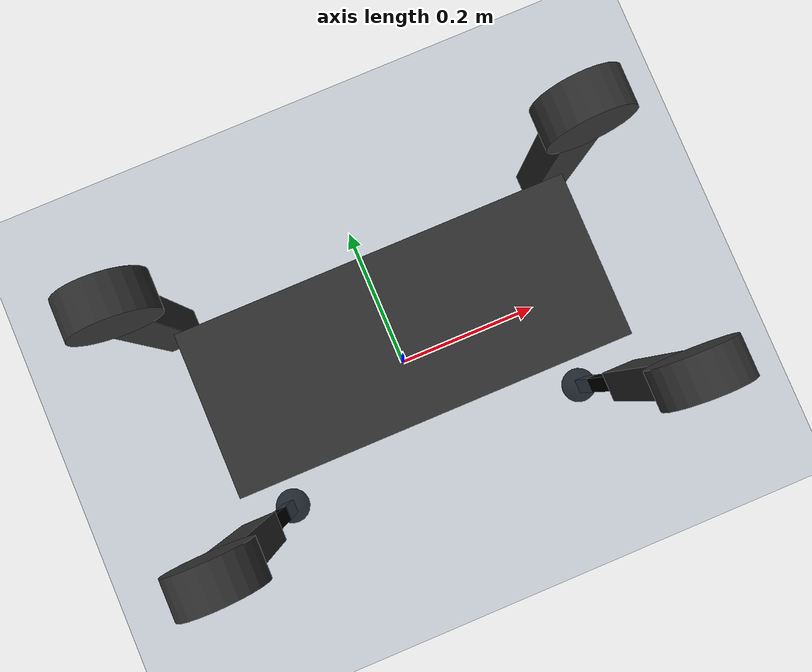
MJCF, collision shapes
<mujoco model="basic scene">

  <include file="aliengo.xml"/>

	 <option timestep="0.001" integrator="RK4" gravity="0 0 -9.81">
		<flag sensornoise="disable" contact="enable" energy="enable"/>
	</option>

  <statistic center="0 0 0.1" extent="0.8"/>

  <asset>
    <texture type="skybox" builtin="gradient" rgb1="0.3 0.5 0.7" rgb2="0 0 0" width="512"
        height="3072"/>
    <texture type="2d" name="groundplane" builtin="checker" mark="edge" rgb1="0.2 0.3 0.4"
        rgb2="0.1 0.2 0.3" markrgb="0.8 0.8 0.8" width="300" height="300"/>
    <material name="groundplane" texture="groundplane" texuniform="true" texrepeat="5 5"
        reflectance="0.2"/>
  </asset>
  <worldbody>
    <light pos="0 0 1.5" dir="0 0 -1" directional="true"/>
    <geom name="floor2" size="0 0 0.5" type="plane" material="groundplane" friction=" 1 1 1"/>
  </worldbody>

</mujoco>

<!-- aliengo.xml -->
<mujoco model="aliengo_description">
    <compiler angle="radian" meshdir="../meshes/" />
    <size njmax="500" nconmax="100" />
    <option gravity='0 0 -9.806' iterations='50' solver='Newton'/>

    <default>
        <geom contype="1" conaffinity="1" friction="0.6 0.3 0.3" rgba="0.5 0.6 0.7 1" margin="0.001" group="0"/>

        <light castshadow="false" diffuse="1 1 1"/>
        <motor ctrlrange="-44.4 44.4" ctrllimited="true"/>
        <camera fovy="60"/>
        <joint damping="0.01" armature="0.01" frictionloss="0.2" />

    </default>

    <asset>
        <mesh name="trunk" file="trunk.stl" />
        <mesh name="hip" file="hip.stl" />
        <mesh name="thigh_mirror" file="thigh_mirror.stl" />
        <mesh name="calf" file="calf.stl" />
        <mesh name="thigh" file="thigh.stl" />
    </asset>

    <asset>
        <texture type="skybox" builtin="gradient" rgb1="1.0 1.0 1.0" rgb2="1.0 1.0 1.0" width="512" height="512"/>
        <texture name="plane" type="2d" builtin="flat" rgb1="1 1 1" rgb2="1 1 1" width="512" height="512" mark="cross" markrgb="0 0 0"/>
        <material name="plane" reflectance="0.0" texture="plane" texrepeat="3 3" texuniform="true"/>
    </asset>

    <visual>
        <rgba com="0.502 1.0 0 0.5" contactforce="0.98 0.4 0.4 0.7" contactpoint="1.0 1.0 0.6 0.4"/>
        <scale com="0.2" forcewidth="0.035" contactwidth="0.10" contactheight="0.04"/>
    </visual>

    <worldbody>
        <light directional="true" diffuse=".8 .8 .8" pos="0 0 10" dir="0 0 -10"/>
        <camera name="track" mode="trackcom" pos="0 -1.3 1.6" xyaxes="1 0 0 0 0.707 0.707"/>

        <body name="trunk" pos="0 0 0.4">
            <inertial pos="0.00846406 0.00404455 -0.000762916" quat="-3.12625e-05 0.708321 0.00247254 0.705886" mass="9.042" diaginertia="0.174706 0.161175 0.033357" />
            <joint type="free" />
            <geom type="mesh" contype="0" conaffinity="0" group="1" rgba="0.2 0.2 0.2 1" mesh="trunk" />
            <geom size="0.18 0.075 0.056" type="box" rgba="0.2 0.2 0.2 0" />
            <geom size="0.0005 0.0005 0.0005" type="box" contype="0" conaffinity="0" group="1" rgba="0.8 0 0 0" />
            <geom size="0.0005 0.0005 0.0005" type="box" rgba="0.8 0 0 0" />
            <site name="imu" pos="0 0 0"/>

            <body name="FR_hip" pos="0.2399 -0.051 0">
                <inertial pos="-0.022191 -0.015144 -1.5e-05" quat="0.0135493 0.706835 -0.0117635 0.707151" mass="1.993" diaginertia="0.00558695 0.00491009 0.00290132" />
                <joint name="FR_hip_joint" pos="0 0 0" axis="1 0 0" limited="true" range="-1.22173 1.22173" />
                <geom quat="0 1 0 0" type="mesh" contype="0" conaffinity="0" group="1" rgba="0.2 0.2 0.2 1" mesh="hip" />
                <geom size="0.046 0.0209" pos="0 -0.083 0" quat="0.707107 0.707107 0 0" type="cylinder" rgba="0.2 0.2 0.2 0" />
                <body name="FR_thigh" pos="0 -0.083 0">
                    <inertial pos="-0.005607 0.003877 -0.048199" quat="0.694544 -0.0335669 -0.031246 0.717987" mass="0.639" diaginertia="0.0058474 0.00571186 0.000324584" />
                    <joint name="FR_thigh_joint" pos="0 0 0" axis="0 1 0" />
                    <geom type="mesh" contype="0" conaffinity="0" group="1" rgba="0.2 0.2 0.2 1" mesh="thigh_mirror" />
                    <geom size="0.125 0.0187 0.0215" pos="0 0 -0.125" quat="0.707107 0 0.707107 0" type="box" rgba="0.2 0.2 0.2 0" />
                    <body name="FR_calf" pos="0 0 -0.25">
                        <inertial pos="0.00215606 4.88427e-05 -0.166671" quat="0.707462 0.00517582 0.00535172 0.706712" mass="0.267" diaginertia="0.00690975 0.00689712 5.4885e-05" />
                        <joint name="FR_calf_joint" pos="0 0 0" axis="0 1 0" limited="true" range="-2.77507 -0.645772" />
                        <geom type="mesh" contype="0" conaffinity="0" group="1" rgba="0 0 0 1" mesh="calf" />
                        <geom size="0.125 0.0104 0.008" pos="0 0 -0.125" quat="0.707107 0 0.707107 0" type="box" rgba="0 0 0 0" />
                        <geom size="0.0165" pos="0 0 -0.25" contype="0" conaffinity="0" group="1" rgba="0 0 0 1" />
                        <geom size="0.0265" pos="0 0 -0.25" rgba="0 0 0 1" />
                        <site name="FR_tip" pos="0 0 -0.25"/> <!-- Add site to attach IMU and/or get tip pos/quat-->
                    </body>
                </body>
            </body>
            <body name="FL_hip" pos="0.2399 0.051 0">
                <inertial pos="-0.022191 0.015144 -1.5e-05" quat="-0.0135493 0.706835 0.0117635 0.707151" mass="1.993" diaginertia="0.00558695 0.00491009 0.00290132" />
                <joint name="FL_hip_joint" pos="0 0 0" axis="1 0 0" limited="true" range="-1.22173 1.22173" />
                <geom type="mesh" contype="0" conaffinity="0" group="1" rgba="0.2 0.2 0.2 1" mesh="hip" />
                <geom size="0.046 0.0209" pos="0 0.083 0" quat="0.707107 0.707107 0 0" type="cylinder" rgba="0.2 0.2 0.2 0" />
                <body name="FL_thigh" pos="0 0.083 0">
                    <inertial pos="-0.005607 -0.003877 -0.048199" quat="0.717987 -0.031246 -0.0335669 0.694544" mass="0.639" diaginertia="0.0058474 0.00571186 0.000324584" />
                    <joint name="FL_thigh_joint" pos="0 0 0" axis="0 1 0" />
                    <geom type="mesh" contype="0" conaffinity="0" group="1" rgba="0.2 0.2 0.2 1" mesh="thigh" />
                    <geom size="0.125 0.0187 0.0215" pos="0 0 -0.125" quat="0.707107 0 0.707107 0" type="box" rgba="0.2 0.2 0.2 0" />
                    <body name="FL_calf" pos="0 0 -0.25">
                        <inertial pos="0.00215606 4.88427e-05 -0.166671" quat="0.707462 0.00517582 0.00535172 0.706712" mass="0.267" diaginertia="0.00690975 0.00689712 5.4885e-05" />
                        <joint name="FL_calf_joint" pos="0 0 0" axis="0 1 0" limited="true" range="-2.77507 -0.645772" />
                        <geom type="mesh" contype="0" conaffinity="0" group="1" rgba="0 0 0 1" mesh="calf" />
                        <geom size="0.125 0.0104 0.008" pos="0 0 -0.125" quat="0.707107 0 0.707107 0" type="box" rgba="0 0 0 0" />
                        <geom size="0.0165" pos="0 0 -0.25" contype="0" conaffinity="0" group="1" rgba="0 0 0 1" />
                        <geom size="0.0265" pos="0 0 -0.25" rgba="0 0 0 1" />
                        <site name="FL_tip" pos="0 0 -0.25"/> <!-- Add site to attach IMU and/or get tip pos/quat-->
                    </body>
                </body>
            </body>
            <body name="RR_hip" pos="-0.2399 -0.051 0">
                <inertial pos="0.022191 -0.015144 -1.5e-05" quat="-0.0117635 0.707151 0.0135493 0.706835" mass="1.993" diaginertia="0.00558695 0.00491009 0.00290132" />
                <joint name="RR_hip_joint" pos="0 0 0" axis="1 0 0" limited="true" range="-1.22173 1.22173" />
                <geom quat="0 0 0 -1" type="mesh" contype="0" conaffinity="0" group="1" rgba="0.2 0.2 0.2 1" mesh="hip" />
                <geom size="0.046 0.0209" pos="0 -0.083 0" quat="0.707107 0.707107 0 0" type="cylinder" rgba="0.2 0.2 0.2 0" />
                <body name="RR_thigh" pos="0 -0.083 0">
                    <inertial pos="-0.005607 0.003877 -0.048199" quat="0.694544 -0.0335669 -0.031246 0.717987" mass="0.639" diaginertia="0.0058474 0.00571186 0.000324584" />
                    <joint name="RR_thigh_joint" pos="0 0 0" axis="0 1 0" />
                    <geom type="mesh" contype="0" conaffinity="0" group="1" rgba="0.2 0.2 0.2 1" mesh="thigh_mirror" />
                    <geom size="0.125 0.0187 0.0215" pos="0 0 -0.125" quat="0.707107 0 0.707107 0" type="box" rgba="0.2 0.2 0.2 0" />
                    <body name="RR_calf" pos="0 0 -0.25">
                        <inertial pos="0.00215606 4.88427e-05 -0.166671" quat="0.707462 0.00517582 0.00535172 0.706712" mass="0.267" diaginertia="0.00690975 0.00689712 5.4885e-05" />
                        <joint name="RR_calf_joint" pos="0 0 0" axis="0 1 0" limited="true" range="-2.77507 -0.645772" />
                        <geom type="mesh" contype="0" conaffinity="0" group="1" rgba="0 0 0 1" mesh="calf" />
                        <geom size="0.125 0.0104 0.008" pos="0 0 -0.125" quat="0.707107 0 0.707107 0" type="box" rgba="0 0 0 0" />
                        <geom size="0.0165" pos="0 0 -0.25" contype="0" conaffinity="0" group="1" rgba="0 0 0 1" />
                        <geom size="0.0265" pos="0 0 -0.25" rgba="0 0 0 1" />
                        <site name="RR_tip" pos="0 0 -0.25"/> <!-- Add site to attach IMU and/or get tip pos/quat-->
                    </body>
                </body>
            </body>
            <body name="RL_hip" pos="-0.2399 0.051 0">
                <inertial pos="0.022191 0.015144 -1.5e-05" quat="0.0117635 0.707151 -0.0135493 0.706835" mass="1.993" diaginertia="0.00558695 0.00491009 0.00290132" />
                <joint name="RL_hip_joint" pos="0 0 0" axis="1 0 0" limited="true" range="-1.22173 1.22173" />
                <geom quat="0 0 1 0" type="mesh" contype="0" conaffinity="0" group="1" rgba="0.2 0.2 0.2 1" mesh="hip" />
                <geom size="0.046 0.0209" pos="0 0.083 0" quat="0.707107 0.707107 0 0" type="cylinder" rgba="0.2 0.2 0.2 0" />
                <body name="RL_thigh" pos="0 0.083 0">
                    <inertial pos="-0.005607 -0.003877 -0.048199" quat="0.717987 -0.031246 -0.0335669 0.694544" mass="0.639" diaginertia="0.0058474 0.00571186 0.000324584" />
                    <joint name="RL_thigh_joint" pos="0 0 0" axis="0 1 0" />
                    <geom type="mesh" contype="0" conaffinity="0" group="1" rgba="0.2 0.2 0.2 1" mesh="thigh" />
                    <geom size="0.125 0.0187 0.0215" pos="0 0 -0.125" quat="0.707107 0 0.707107 0" type="box" rgba="0.2 0.2 0.2 0" />
                    <body name="RL_calf" pos="0 0 -0.25">
                        <inertial pos="0.00215606 4.88427e-05 -0.166671" quat="0.707462 0.00517582 0.00535172 0.706712" mass="0.267" diaginertia="0.00690975 0.00689712 5.4885e-05" />
                        <joint name="RL_calf_joint" pos="0 0 0" axis="0 1 0" limited="true" range="-2.77507 -0.645772" />
                        <geom type="mesh" contype="0" conaffinity="0" group="1" rgba="0 0 0 1" mesh="calf" />
                        <geom size="0.125 0.0104 0.008" pos="0 0 -0.125" quat="0.707107 0 0.707107 0" type="box" rgba="0 0 0 0" />
                        <geom size="0.0165" pos="0 0 -0.25" contype="0" conaffinity="0" group="1" rgba="0 0 0 1" />
                        <geom size="0.0265" pos="0 0 -0.25" rgba="0 0 0 1" />
                        <site name="RL_tip" pos="0 0 -0.25"/> <!-- Add site to attach IMU and/or get tip pos/quat-->
                    </body>
                </body>
            </body>
        </body>
    </worldbody>

    <actuator>

        <motor name="FR_hip"       gear="1" joint="FR_hip_joint"/>
        <motor name="FR_thigh"       gear="1" joint="FR_thigh_joint"/>
        <motor name="FR_calf"       gear="1" joint="FR_calf_joint"/>
        <motor name="FL_hip"     gear="1" joint="FL_hip_joint"/>
        <motor name="FL_thigh"     gear="1" joint="FL_thigh_joint"/>
        <motor name="FL_calf"     gear="1" joint="FL_calf_joint"/>
        <motor name="RR_hip"      gear="1" joint="RR_hip_joint"/>
        <motor name="RR_thigh"   gear="1" joint="RR_thigh_joint"/>
        <motor name="RR_calf"   gear="1" joint="RR_calf_joint" />
        <motor name="RL_hip"      gear="1" joint="RL_hip_joint"/>
        <motor name="RL_thigh"      gear="1" joint="RL_thigh_joint"/>
        <motor name="RL_calf"      gear="1" joint="RL_calf_joint"/>
    </actuator>

    <sensor>

        <jointpos name="FR_hip_pos"     joint="FR_hip_joint"/>
        <jointpos name="FR_thigh_pos"   joint="FR_thigh_joint"/>
        <jointpos name="FR_calf_pos"    joint="FR_calf_joint"/>
        <jointpos name="FL_hip_pos"     joint="FL_hip_joint"/>
        <jointpos name="FL_thigh_pos"   joint="FL_thigh_joint"/>
        <jointpos name="FL_calf_pos"    joint="FL_calf_joint"/>
        <jointpos name="RR_hip_pos"     joint="RR_hip_joint"/>
        <jointpos name="RR_thigh_pos"   joint="RR_thigh_joint"/>
        <jointpos name="RR_calf_pos"    joint="RR_calf_joint" />
        <jointpos name="RL_hip_pos"     joint="RL_hip_joint"/>
        <jointpos name="RL_thigh_pos"   joint="RL_thigh_joint"/>
        <jointpos name="RL_calf_pos"    joint="RL_calf_joint"/>

        <jointvel name="FR_hip_vel"     joint="FR_hip_joint"/>
        <jointvel name="FR_thigh_vel"   joint="FR_thigh_joint"/>
        <jointvel name="FR_calf_vel"    joint="FR_calf_joint"/>
        <jointvel name="FL_hip_vel"     joint="FL_hip_joint"/>
        <jointvel name="FL_thigh_vel"   joint="FL_thigh_joint"/>
        <jointvel name="FL_calf_vel"    joint="FL_calf_joint"/>
        <jointvel name="RR_hip_vel"     joint="RR_hip_joint"/>
        <jointvel name="RR_thigh_vel"   joint="RR_thigh_joint"/>
        <jointvel name="RR_calf_vel"    joint="RR_calf_joint" />
        <jointvel name="RL_hip_vel"     joint="RL_hip_joint"/>
        <jointvel name="RL_thigh_vel"   joint="RL_thigh_joint"/>
        <jointvel name="RL_calf_vel"    joint="RL_calf_joint"/>

        <!-- Body IMU/PosQuat  -->
        <accelerometer name="Body_Acc" site="imu"/>
        <gyro name="Body_Gyro" site="imu"/>

        <framepos name="Body_Pos" objtype="site" objname="imu"/>
        <framequat name="Body_Quat" objtype="site" objname="imu"/>

        <!-- Extra sensors for tips Pos/Quat -->
        <framepos name="FR_Pos" objtype="site" objname="FR_tip"/>
        <framequat name="FR_Quat" objtype="site" objname="FR_tip"/>

        <framepos name="FL_Pos" objtype="site" objname="FL_tip"/>
        <framequat name="FL_Quat" objtype="site" objname="FL_tip"/>

        <framepos name="RR_Pos" objtype="site" objname="RR_tip"/>
        <framequat name="RR_Quat" objtype="site" objname="RR_tip"/>

        <framepos name="RL_Pos" objtype="site" objname="RL_tip"/>
        <framequat name="RL_Quat" objtype="site" objname="RL_tip"/>

        <!-- Extra IMU sensor on foot tips -->
        <accelerometer name="FR_Acc" site="FR_tip"/>
        <gyro name="FR_Gyro" site="FR_tip"/>

        <accelerometer name="FL_Acc" site="FL_tip"/>
        <gyro name="FL_Gyro" site="FL_tip"/>

        <accelerometer name="RR_Acc" site="RR_tip"/>
        <gyro name="RR_Gyro" site="RR_tip"/>

        <accelerometer name="RL_Acc" site="RL_tip"/>
        <gyro name="RL_Gyro" site="RL_tip"/>

        <!-- Force sensors -->
        <force name="FR_foot_force" site="FR_tip"/>
        <force name="FL_foot_force" site="FL_tip"/>
        <force name="RR_foot_force" site="RR_tip"/>
        <force name="RL_foot_force" site="RL_tip"/>

    </sensor>
</mujoco>
